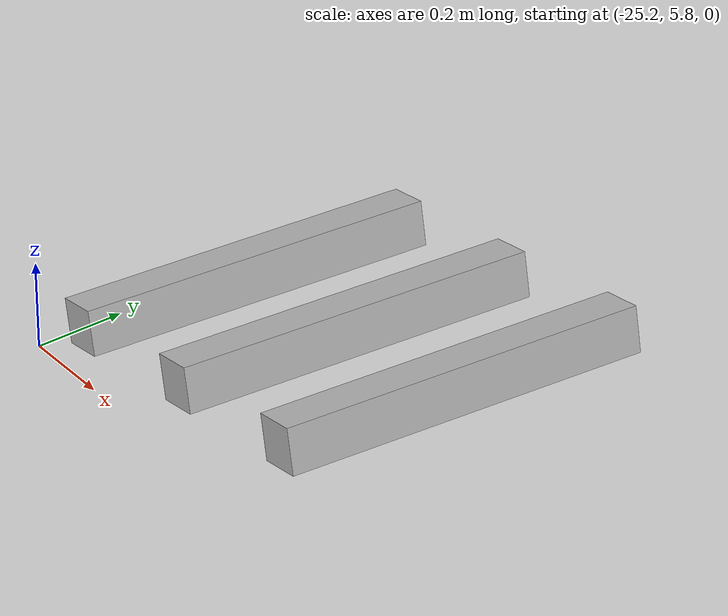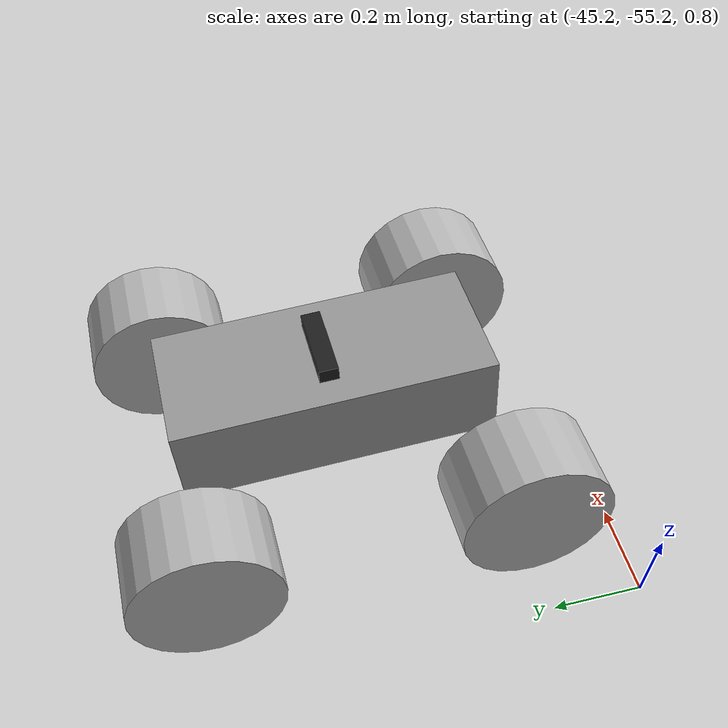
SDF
<sdf version="1.6">
 <world name="default">
  <light name="sun" type="directional">
   <pose>0 0 10 0 -0 0</pose>
   <diffuse>0.8 0.8 0.8 1</diffuse>
   <specular>0.2 0.2 0.2 1</specular>
   <attenuation>
    <range>1000</range>
    <constant>0.9</constant>
    <linear>0.01</linear>
    <quadratic>0.001</quadratic>
   </attenuation>
   <direction>-0.5 0.1 -0.9</direction>
  </light>
  <model name="ground_plane">
   <static>1</static>
   <link name="link">
    <collision name="collision">
     <geometry><plane><normal>0 0 1</normal><size>100 100</size></plane></geometry>
     <surface><friction><ode><mu>100</mu><mu2>50</mu2></ode></friction></surface>
    </collision>
    <visual name="visual">
     <cast_shadows>0</cast_shadows>
     <geometry><plane><normal>0 0 1</normal><size>100 100</size></plane></geometry>
     <material>
      <script><uri>file://media/materials/scripts/gazebo.material</uri><name>Gazebo/Grey</name></script>
     </material>
    </visual>
   </link>
  </model>
  <model name="entorno">
   <pose>-25.9832 6.33052 4.9842 -1.5708 1.3524 -0.08507</pose>
   <link name="poste1">
    <pose>5 0.2 0 0 -0 0</pose>
    <collision name="collision"><geometry><box><size>0.1 0.1 0.8</size></box></geometry></collision>
    <visual name="visual"><geometry><box><size>0.1 0.1 0.8</size></box></geometry></visual>
    <inertial>
     <inertia><ixx>1</ixx><ixy>0</ixy><ixz>0</ixz><iyy>1</iyy><iyz>0</iyz><izz>1</izz></inertia>
     <mass>1</mass>
    </inertial>
   </link>
   <link name="poste2">
    <pose>5 -0.2 0 0 -0 0</pose>
    <collision name="collision"><geometry><box><size>0.1 0.1 0.8</size></box></geometry></collision>
    <visual name="visual"><geometry><box><size>0.1 0.1 0.8</size></box></geometry></visual>
    <inertial>
     <inertia><ixx>1</ixx><ixy>0</ixy><ixz>0</ixz><iyy>1</iyy><iyz>0</iyz><izz>1</izz></inertia>
     <mass>1</mass>
    </inertial>
   </link>
   <link name="poste3">
    <pose>5 -0.6 0 0 -0 0</pose>
    <collision name="collision"><geometry><box><size>0.1 0.1 0.8</size></box></geometry></collision>
    <visual name="visual"><geometry><box><size>0.1 0.1 0.8</size></box></geometry></visual>
    <inertial>
     <inertia><ixx>1</ixx><ixy>0</ixy><ixz>0</ixz><iyy>1</iyy><iyz>0</iyz><izz>1</izz></inertia>
     <mass>1</mass>
    </inertial>
   </link>
  </model>
  <gravity>0 0 -9.8</gravity>
  <magnetic_field>6e-06 2.3e-05 -4.2e-05</magnetic_field>
  <atmosphere type="adiabatic"/>
  <physics name="default_physics" default="0" type="ode">
   <max_step_size>0.001</max_step_size>
   <real_time_factor>1</real_time_factor>
   <real_time_update_rate>1000</real_time_update_rate>
  </physics>
  <scene><ambient>0.4 0.4 0.4 1</ambient><background>0.7 0.7 0.7 1</background><shadows>1</shadows></scene>
  <audio><device>default</device></audio>
  <spherical_coordinates>
   <surface_model>EARTH_WGS84</surface_model>
   <latitude_deg>0</latitude_deg>
   <longitude_deg>0</longitude_deg>
   <elevation>0</elevation>
   <heading_deg>0</heading_deg>
  </spherical_coordinates>
  <model name="QT1">
   <link name="chassis_link">
    <inertial>
     <pose>-0.152641 -0 0.04793 0 -0 0</pose>
     <mass>10.089</mass>
     <inertia>
      <ixx>0.825033</ixx>
      <ixy>1.69466e-17</ixy>
      <ixz>-0.0738121</ixz>
      <iyy>0.425858</iyy>
      <iyz>-3.70572e-12</iyz>
      <izz>0.937486</izz>
     </inertia>
    </inertial>
    <collision name="chassis_link_collision">
     <geometry><box><size>0.7038 0.3019 0.2</size></box></geometry>
    </collision>
    <collision name="chassis_link_fixed_joint_lump__link_blwheel_collision_collision_1">
     <pose>-0.35 0.34095 0 1.5708 -0 0</pose>
     <geometry><cylinder><length>0.18</length><radius>0.165</radius></cylinder></geometry>
    </collision>
    <collision name="chassis_link_fixed_joint_lump__link_brwheel_collision_collision_2">
     <pose>-0.35 -0.34095 0 1.5708 -0 0</pose>
     <geometry><cylinder><length>0.18</length><radius>0.165</radius></cylinder></geometry>
    </collision>
    <collision name="chassis_link_fixed_joint_lump__ZED_link_collision_3">
     <pose>0 0 0.21625 0 -0 0</pose>
     <geometry><box><size>0.0431 0.17525 0.0325</size></box></geometry>
    </collision>
    <visual name="chassis_link_visual">
     <pose>0 0 0.1 0 -0 0</pose>
     <geometry><box><size>0.7038 0.3019 0.2</size></box></geometry>
     <material>
      <script><name>Gazebo/Gray</name><uri>file://media/materials/scripts/gazebo.material</uri></script>
     </material>
    </visual>
    <visual name="chassis_link_fixed_joint_lump__link_blwheel_visual_visual_1">
     <pose>-0.35 0.34095 0 1.5708 -0 0</pose>
     <geometry><cylinder><length>0.18</length><radius>0.165</radius></cylinder></geometry>
    </visual>
    <visual name="chassis_link_fixed_joint_lump__link_brwheel_visual_visual_2">
     <pose>-0.35 -0.34095 0 1.5708 -0 0</pose>
     <geometry><cylinder><length>0.18</length><radius>0.165</radius></cylinder></geometry>
    </visual>
    <visual name="chassis_link_fixed_joint_lump__ZED_link_visual_3">
     <pose>0 0 0.21625 0 -0 0</pose>
     <geometry><box><size>0.0431 0.17525 0.0325</size></box></geometry>
     <material>
      <script><name>Gazebo/Black</name><uri>file://media/materials/scripts/gazebo.material</uri></script>
     </material>
    </visual>
    <sensor name="ZED_camera" type="depth">
     <update_rate>30</update_rate>
     <visualize>1</visualize>
     <always_on>1</always_on>
     <camera name="__default__">
      <horizontal_fov>1.1</horizontal_fov>
      <image><width>2560</width><height>720</height><format>B8G8R8</format></image>
      <clip><near>0.1</near><far>100</far></clip>
     </camera>
     <plugin name="kinect_controller" filename="libgazebo_ros_openni_kinect.so">
      <baseline>0.2</baseline>
      <alwaysOn>1</alwaysOn>
      <updateRate>0.0</updateRate>
      <cameraName>ZED</cameraName>
      <imageTopicName>rgb/image_raw</imageTopicName>
      <cameraInfoTopicName>rgb/camera_info</cameraInfoTopicName>
      <depthImageTopicName>depth/image_raw</depthImageTopicName>
      <depthImageCameraInfoTopicName>depth/camera_info</depthImageCameraInfoTopicName>
      <pointCloudTopicName>points</pointCloudTopicName>
      <frameName>ZED_link</frameName>
      <pointCloudCutoffMax>3.5</pointCloudCutoffMax>
      <pointCloudCutoff>0.5</pointCloudCutoff>
      <CxPrime>0</CxPrime>
      <Cx>0</Cx>
      <Cy>0</Cy>
      <focalLength>0</focalLength>
      <hackBaseline>0</hackBaseline>
      <robotNamespace>/</robotNamespace>
     </plugin>
     <pose>0 0 0.21625 0 -0 0</pose>
    </sensor>
    <sensor name="imu_sensor" type="imu">
     <always_on>1</always_on>
     <update_rate>100</update_rate>
     <visualize>1</visualize>
     <topic>__default_topic__</topic>
     <plugin name="imu_plugin" filename="libgazebo_ros_imu_sensor.so">
      <topicName>imu</topicName>
      <bodyName>imu_link</bodyName>
      <updateRateHZ>10.0</updateRateHZ>
      <gaussianNoise>0.0</gaussianNoise>
      <xyzOffset>0 0 0</xyzOffset>
      <rpyOffset>0 0 0</rpyOffset>
      <frameName>imu_link</frameName>
      <robotNamespace>/</robotNamespace>
     </plugin>
     <pose>0 0 0.21625 0 -0 0</pose>
    </sensor>
    <sensor name="camera1" type="camera">
     <update_rate>30</update_rate>
     <camera name="head">
      <horizontal_fov>1.1</horizontal_fov>
      <image><width>2560</width><height>720</height><format>R8G8B8</format></image>
      <clip><near>0.02</near><far>300</far></clip>
      <noise><type>gaussian</type><mean>0</mean><stddev>0.007</stddev></noise>
     </camera>
     <plugin name="camera_controller" filename="libgazebo_ros_camera.so">
      <alwaysOn>1</alwaysOn>
      <updateRate>0.0</updateRate>
      <cameraName>rrbot/camera1</cameraName>
      <imageTopicName>image_raw</imageTopicName>
      <cameraInfoTopicName>camera_info</cameraInfoTopicName>
      <frameName>ZED_link</frameName>
      <hackBaseline>0.07</hackBaseline>
      <distortionK1>0.0</distortionK1>
      <distortionK2>0.0</distortionK2>
      <distortionK3>0.0</distortionK3>
      <distortionT1>0.0</distortionT1>
      <distortionT2>0.0</distortionT2>
      <robotNamespace>/</robotNamespace>
     </plugin>
     <pose>0 0 0.21625 0 -0 0</pose>
    </sensor>
    <sensor name="lidar" type="ray">
     <visualize>1</visualize>
     <update_rate>10</update_rate>
     <ray>
      <scan>
       <horizontal>
        <samples>370</samples>
        <resolution>0.5</resolution>
        <min_angle>-1.5708</min_angle>
        <max_angle>1.5708</max_angle>
       </horizontal>
       <vertical><samples>1</samples><min_angle>0</min_angle><max_angle>0</max_angle></vertical>
      </scan>
      <range><min>0.1</min><max>10</max><resolution>0.01</resolution></range>
      <noise><type>gaussian</type><mean>0</mean><stddev>0.01</stddev></noise>
     </ray>
     <plugin name="gazebo_ros_hokuyo_controller" filename="libgazebo_ros_laser.so">
      <topicName>/scan</topicName>
      <frameName>ZED_link</frameName>
      <robotNamespace>/</robotNamespace>
     </plugin>
     <pose>0 0 0.21625 0 -0 0</pose>
    </sensor>
   </link>
   <link name="flwheel_link">
    <pose>0.35 0.34095 0 1.5708 -0 0</pose>
    <inertial>
     <pose>0 0 0 1.57079 1.57079 3.14159</pose>
     <mass>2.2</mass>
     <inertia>
      <ixx>0.0209137</ixx>
      <ixy>0</ixy>
      <ixz>0</ixz>
      <iyy>0.0209137</iyy>
      <iyz>0</iyz>
      <izz>0.0299475</izz>
     </inertia>
    </inertial>
    <collision name="flwheel_link_fixed_joint_lump__link_flwheel_collision_collision">
     <geometry><cylinder><length>0.18</length><radius>0.165</radius></cylinder></geometry>
    </collision>
    <visual name="flwheel_link_fixed_joint_lump__link_flwheel_visual_visual">
     <geometry><cylinder><length>0.18</length><radius>0.165</radius></cylinder></geometry>
    </visual>
   </link>
   <joint name="chassis_to_flwheel" type="revolute">
    <child>flwheel_link</child>
    <parent>chassis_link</parent>
    <axis>
     <xyz>0 -1 -0</xyz>
     <limit><lower>-1e+16</lower><upper>1e+16</upper></limit>
     <dynamics><spring_reference>0</spring_reference><spring_stiffness>0</spring_stiffness></dynamics>
     <use_parent_model_frame>1</use_parent_model_frame>
    </axis>
   </joint>
   <link name="frwheel_link">
    <pose>0.35 -0.34095 0 1.5708 -0 0</pose>
    <inertial>
     <pose>0 0 0 1.57079 1.57079 3.14159</pose>
     <mass>2.2</mass>
     <inertia>
      <ixx>0.0209137</ixx>
      <ixy>0</ixy>
      <ixz>0</ixz>
      <iyy>0.0209137</iyy>
      <iyz>0</iyz>
      <izz>0.0299475</izz>
     </inertia>
    </inertial>
    <collision name="frwheel_link_fixed_joint_lump__link_frwheel_collision_collision">
     <geometry><cylinder><length>0.18</length><radius>0.165</radius></cylinder></geometry>
    </collision>
    <visual name="frwheel_link_fixed_joint_lump__link_frwheel_visual_visual">
     <geometry><cylinder><length>0.18</length><radius>0.165</radius></cylinder></geometry>
    </visual>
   </link>
   <joint name="chassis_to_frwheel" type="revolute">
    <child>frwheel_link</child>
    <parent>chassis_link</parent>
    <axis>
     <xyz>0 1 0</xyz>
     <limit><lower>-1e+16</lower><upper>1e+16</upper></limit>
     <dynamics><spring_reference>0</spring_reference><spring_stiffness>0</spring_stiffness></dynamics>
     <use_parent_model_frame>1</use_parent_model_frame>
    </axis>
   </joint>
   <plugin name="differential_drive_controller" filename="libgazebo_ros_diff_drive.so">
    <leftJoint>chassis_to_flwheel</leftJoint>
    <rightJoint>chassis_to_frwheel</rightJoint>
    <wheelSeparation>0.7</wheelSeparation>
    <wheelDiameter>0.33</wheelDiameter>
    <torque>5000</torque>
    <publishWheelTF>1</publishWheelTF>
    <robotNamespace>/</robotNamespace>
    <publishTf>1</publishTf>
    <publishWheelJointState>0</publishWheelJointState>
    <alwaysOn>1</alwaysOn>
    <updateRate>100.0</updateRate>
    <broadcastTF>1</broadcastTF>
    <wheelTorque>50000.0</wheelTorque>
    <commandTopic>cmd_vel</commandTopic>
    <odometryFrame>odom</odometryFrame>
    <odometryTopic>odom</odometryTopic>
    <pose_covariance_diagonal>[1.0, 1.0, 0.0, 0.0, 0.0, 1.0]</pose_covariance_diagonal>
    <twist_covariance_diagonal>[0.01, 0.0, 0.0, 0.0, 0.0, 0.1]</twist_covariance_diagonal>
    <gaussianNoise>0.05</gaussianNoise>
    <robotBaseFrame>chassis_link</robotBaseFrame>
    <legacyMode>0</legacyMode>
    <publishOdomTF>1</publishOdomTF>
    <odometrySource>world</odometrySource>
   </plugin>
   <plugin name="gazebo_ros_gps" filename="libhector_gazebo_ros_gps.so">
    <updateRate>4.0</updateRate>
    <bodyName>gps_link</bodyName>
    <frameId>gps_link</frameId>
    <topicName>/gps/fix</topicName>
    <velocityTopicName>/gps/fix_velocity</velocityTopicName>
    <referenceLatitude>-30.06022459407145675</referenceLatitude>
    <referenceLongitude>-51.173913575780311191</referenceLongitude>
    <referenceHeading>90</referenceHeading>
    <referenceAltitude>10</referenceAltitude>
    <offset>0 0 0</offset>
    <drift>0.001 0.001 0.001</drift>
    <gaussianNoise>0.05 0.05 0.05</gaussianNoise>
    <velocityDrift>0.001 0.001 0.001</velocityDrift>
    <velocityGaussianNoise>0.5 0.5 0.5</velocityGaussianNoise>
    <robotNamespace>/</robotNamespace>
   </plugin>
   <static>0</static>
   <plugin name="ros_control" filename="libgazebo_ros_control.so"><robotNamespace>/</robotNamespace></plugin>
   <pose>-44.6743 -54.6183 0.963132 -0.072661 -0.050152 -1.5708</pose>
  </model>
 </world>
</sdf>
